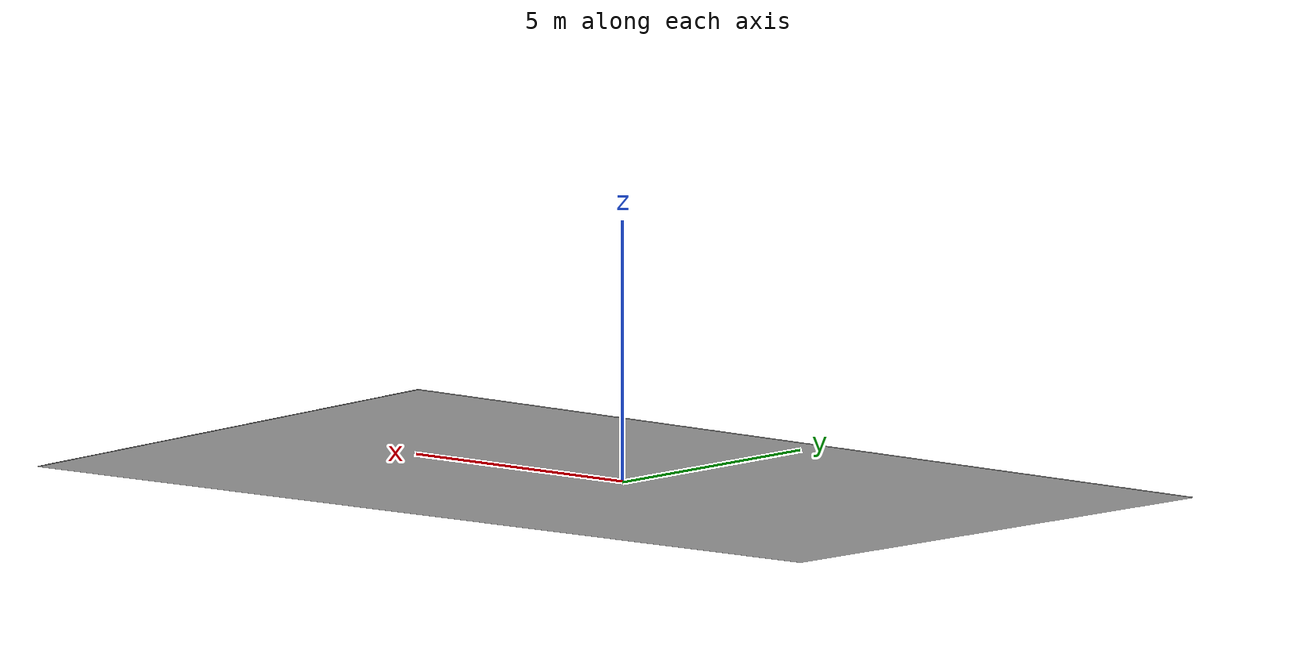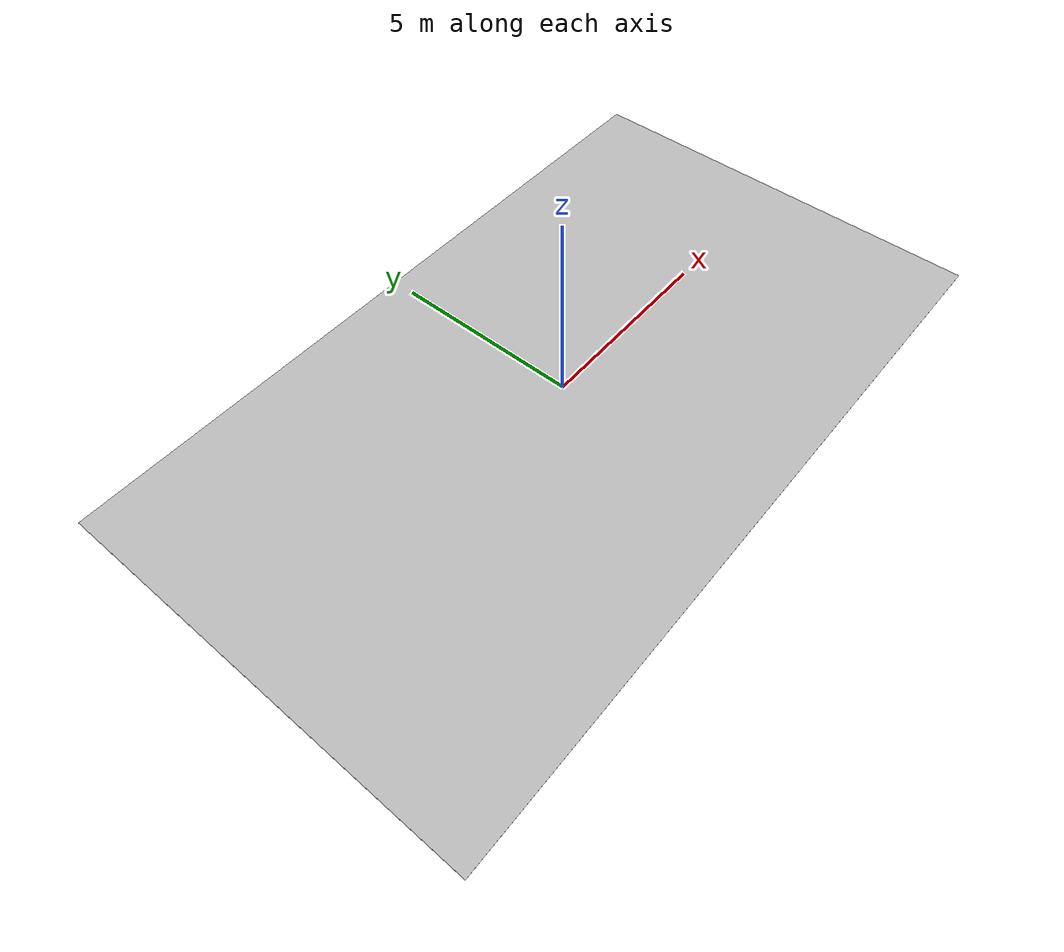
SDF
<?xml version="1.0" ?>
<sdf version="1.5">
  <model name="Textured_Floor">
    <static>true</static>
    <link name="link">
      <collision name="collision">
        <geometry>
          <box>
            <size>19 11.25 0.01</size>
          </box>
        </geometry>
        <surface>
          <friction>
            <ode>
              <mu>100</mu>
              <mu2>50</mu2>
            </ode>
          </friction>
        </surface>
      </collision>
      <visual name="visual">
        <cast_shadows>false</cast_shadows>
        <geometry>
           <box>
            <size>19 11.25 0.01</size>
          </box>
        </geometry>
        <material>
          <script>
            <uri>model://Textured_Floor/materials/scripts</uri>
            <uri>model://Textured_Floor/materials/textures</uri>
            <name>floorMat/Diffuse</name>
          </script>
        </material>
      </visual>
    </link>
  </model>
</sdf>
